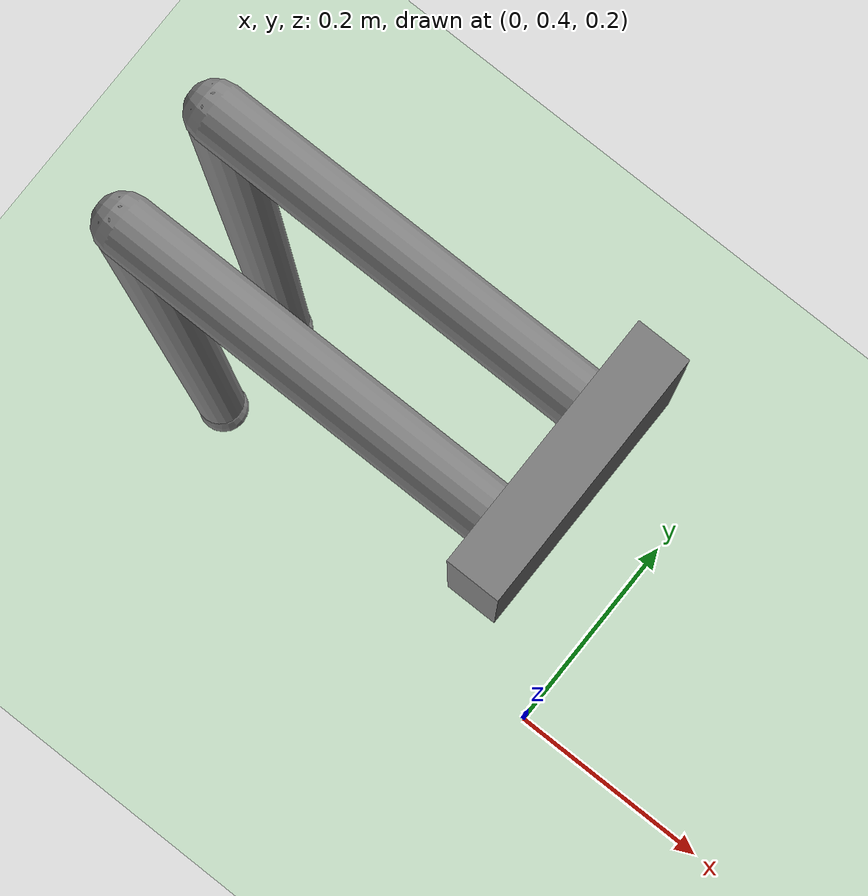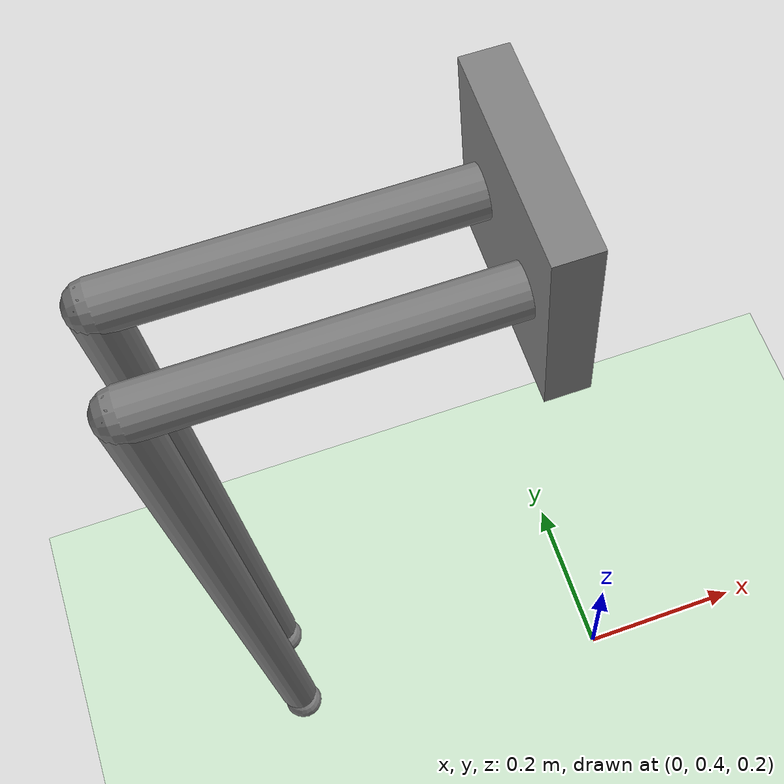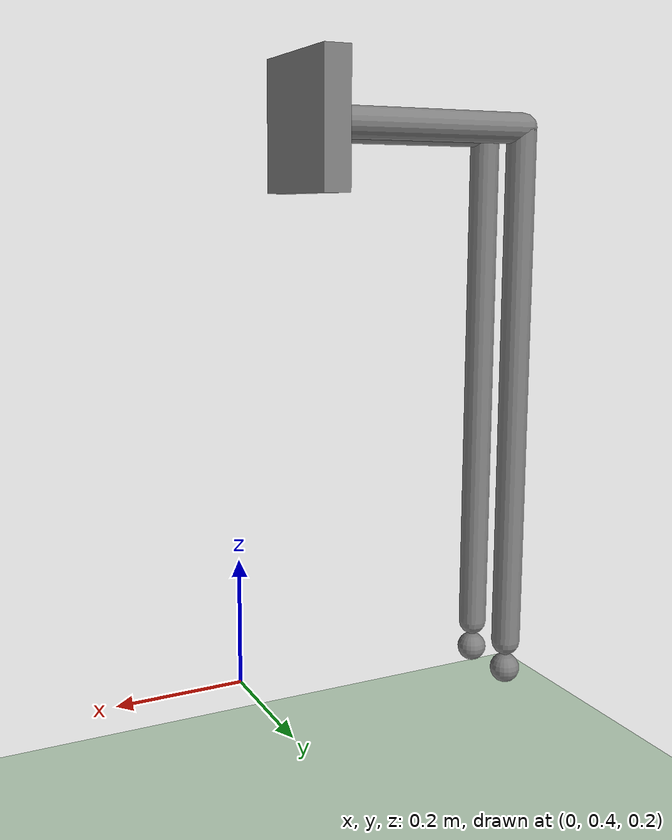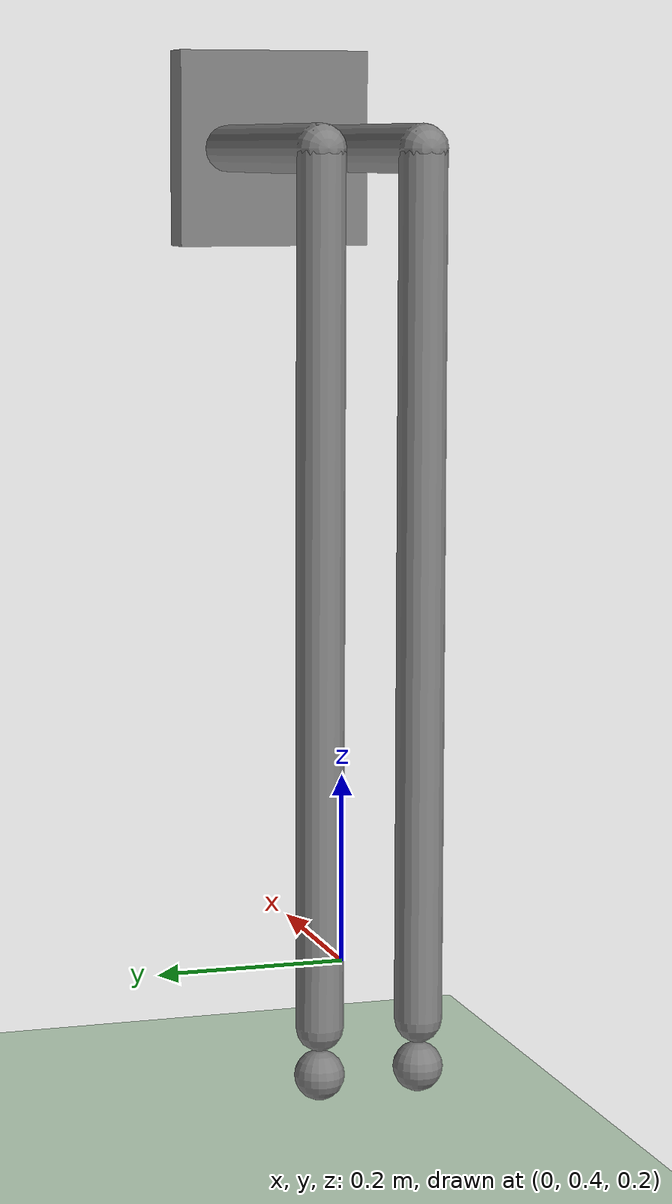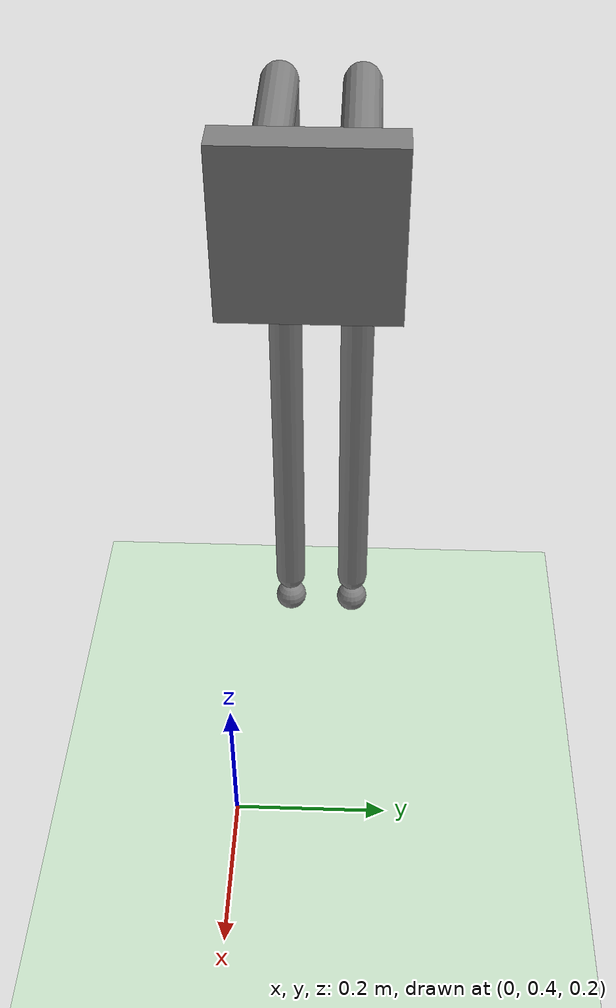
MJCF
<?xml version="1.0" encoding="utf-8"?>
<mujoco model="XMLModel">
	<statistic center="0 0 1" extent="2"/>
	<option timestep="0.00555"/>
	<default>
		<motor ctrllimited="true" ctrlrange="-1 1"/>
		<default class="body">
			<geom condim="1" friction="1.0 0.05 0.05" type="capsule" solimp="0.9 0.99 0.003" solref="0.015 1"/>
			<joint armature="0.007" damping="0.1" limited="true" stiffness="5" type="hinge" solimplimit="0 0.99 0.01"/>
			<site group="3" size="0.04"/>
			<default class="force-torque">
				<site rgba="1 0 0 1" size="0.01 0.01 0.02" type="box"/>
			</default>
			<default class="touch">
				<site rgba="0 0 1 0.3" type="capsule"/>
			</default>
		</default>
	</default>
	<asset>
		<texture builtin="gradient" height="100" rgb1="0.8 0.8 0.8" rgb2="0.8 0.8 0.8" type="skybox" width="100" />
		<texture builtin="flat" height="1278" mark="cross" markrgb="1 1 1" name="texgeom" random="0.01" rgb1="0.8 0.6 0.4" rgb2="0.8 0.6 0.4" type="cube" width="127" />
		<texture builtin="checker" height="100" name="texplane" random="0.01" rgb1="0.8 0.8 0.8" rgb2="0.8 0.8 0.8" type="2d" width="100" />
		<material name="MatPlane" reflectance="0.5" shininess="1" specular="1" texrepeat="60 60" texture="texplane" />
		<material name="geom" texture="texgeom" texuniform="true" />
	</asset>
	<worldbody>
		<light cutoff="100" diffuse="1 1 1" dir="-0 0 -1.3" directional="true" exponent="1" pos="1 0 1.3" specular=".1 .1 .1" />
		<camera name="track_3" mode="fixed" pos="6.5 0 11.5" xyaxes="1 0 0 0 1 0" />
		<camera name="staris_camera" mode="fixed" pos="-1 -6 2.6" xyaxes="0.88 -0.5 0 0.1 0.1 0.99" />
		<geom condim="3" friction="1 .1 .1" material="MatPlane" name="flatfloor" pos="0 0 0" rgba="0.8 0.9 0.8 1" size="20 20 2" type="plane" />
		<body childclass="body" name="pelvis" pos="0 0 1">
			<freejoint name="root"/>
			<site class="force-torque" name="root"/>
			<site class="touch" name="pelvis" pos="0 0 0.07" size="0.091" type="sphere"/>
			<site class="touch" name="upper_waist" pos="0 0 0.205" size="0.071" type="sphere"/>

			<body name="SRL_root" pos="-0.07 0.5 0.05" quat="0.0 0.0 0.0 1.0">
				<geom density="2500" name="SRL_geom_root" pos="0 0 0" size="0.02 0.095 0.095" type="box"/>
				<body name="SRL_right_leg1" pos="0.02 0.0475 0" quat="1.0 0.0 0.0 0.0">
					<geom density="2500" fromto="0 0 0 0.3054 0 0" name="SRL_geom_right_leg1" size="0.0226" type="capsule"/>
					<joint armature="0.02" axis="0 0 1" damping="30" name="SRL_joint_right_hipjoint_z" pos="0 0 0" range="0 40" stiffness="300"/>
					<joint armature="0.02" axis="0 1 0" damping="30" name="SRL_joint_right_hipjoint_y" pos="0 0 0" range="-5 70" stiffness="300"/>
					<body name="SRL_right_leg2" pos="0.3054 0 0" quat="0.70711 0.0 0.70711 0.0">
						<geom density="2500" fromto="0 0 0 0.7955 0 0" name="SRL_geom_right_leg2" size="0.022" type="capsule"/>
						<joint armature="0.02" axis="0 1 0" damping="30" name="SRL_joint_right_kneejoint" pos="0 0 0" range="-50 50" stiffness="300"/>
						<body name="SRL_right_end" pos="0.7955 0 0" quat="0.70711 0.0 -0.70711 0.0">
							<geom density="2500" friction="5.0 0.05 0.05" name="SRL_geom_right_end" pos="0 0 -0.045" size="0.0231" type="sphere"/>
							<joint armature="0.02" axis="0 1 0" damping="30" name="SRL_joint_right_ankle" pos="0 0 0" range="-5 5" stiffness="300"/>
						</body>
					</body>
				</body>
				<body name="SRL_left_leg1" pos="0.02 -0.0475 0" quat="1.0 0.0 0.0 0.0">
					<geom density="2500" fromto="0 0 0 0.3054 0 0" name="SRL_geom_left_leg1" size="0.0226" type="capsule"/>
					<joint armature="0.02" axis="0 0 1" damping="30" name="SRL_joint_left_hip_z" pos="0 0 0" range="-40 0" stiffness="300"/>
					<joint armature="0.02" axis="0 1 0" damping="30" name="SRL_joint_left_hip_y" pos="0 0 0" range="-5 70" stiffness="300"/>
					<body name="SRL_left_leg2" pos="0.3054 0 0" quat="0.70711 0.0 0.70711 0.0">
						<geom density="2500" fromto="0 0 0 0.7955 0 0" name="SRL_geom_left_leg2" size="0.022" type="capsule"/>
						<joint armature="0.02" axis="0 1 0" damping="30" name="SRL_joint_left_kneejoint" pos="0 0 0" range="-50 50" stiffness="300"/>
						<body name="SRL_left_end" pos="0.7955 0 0" quat="0.70711 0.0 -0.70711 0.0">
							<geom density="2500" friction="5.0 0.05 0.05" name="SRL_geom_left_end" pos="0 0 -0.045" size="0.0231" type="sphere"/>
							<joint armature="0.02" axis="0 1 0" damping="30" name="SRL_joint_left_ankle" pos="0 0 0" range="-5 5" stiffness="300"/>
						</body>
					</body>
				</body>
			</body>

		</body>
	</worldbody>

</mujoco>
